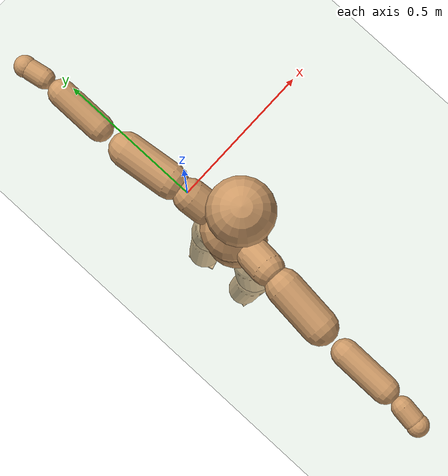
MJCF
<mujoco model="humanoid">
  <compiler coordinate="local"/>
  <default>
    <joint damping="0.0" armature="0.01" stiffness="0.0" limited="true"/>
    <geom conaffinity="1" condim="3" contype="7" margin="0.001" rgba="0.8 0.6 .4 1"/>
  </default>
  <asset>
    <texture type="skybox" builtin="gradient" rgb1=".4 .5 .6" rgb2="0 0 0" width="100" height="100"/>
    <texture builtin="flat" height="1278" mark="cross" markrgb="1 1 1" name="texgeom" random="0.01" rgb1="0.8 0.6 0.4" rgb2="0.8 0.6 0.4" type="cube" width="127"/>
    <texture builtin="checker" height="100" name="texplane" rgb1="0 0 0" rgb2="0.8 0.8 0.8" type="2d" width="100"/>
    <material name="MatPlane" reflectance="0.5" shininess="1" specular="1" texrepeat="60 60" texture="texplane"/>
    <material name="geom" texture="texgeom" texuniform="true"/>
  </asset>
  <worldbody>
    <light cutoff="100" diffuse="1 1 1" dir="-0 0 -1.3" directional="true" exponent="1" pos="0 0 1.3" specular=".1 .1 .1"/>
    <geom conaffinity="1" condim="3" name="floor" pos="0 0 0" rgba="0.8 0.9 0.8 1" size="100 100 .2" type="plane" material="MatPlane"/>
    <body name="Pelvis" pos="-0.0007 -0.2138 0.0278">
      <freejoint name="Pelvis"/>
      <geom type="sphere" contype="1" conaffinity="1" density="500" size="0.0991" pos="0.0000 0.0000 0.0000" name="Pelvis"/>
      <body name="L_Hip" pos="-0.007 0.0757 -0.0927">
        <joint name="L_Hip_x" type="hinge" pos="0 0 0" axis="1 0 0" stiffness="800" damping="80" armature="0.02" range="-180.0000 180.0000"/>
        <joint name="L_Hip_y" type="hinge" pos="0 0 0" axis="0 1 0" stiffness="800" damping="80" armature="0.02" range="-180.0000 180.0000"/>
        <joint name="L_Hip_z" type="hinge" pos="0 0 0" axis="0 0 1" stiffness="800" damping="80" armature="0.02" range="-180.0000 180.0000"/>
        <geom type="capsule" contype="1" conaffinity="1" density="500" fromto="-0.0019 0.0066 -0.0765 -0.0074 0.0263 -0.3061" size="0.0668" name="L_Hip"/>
        <body name="L_Knee" pos="-0.0093 0.0329 -0.3826">
          <joint name="L_Knee_x" type="hinge" pos="0 0 0" axis="1 0 0" stiffness="800" damping="80" armature="0.02" range="-180.0000 180.0000"/>
          <joint name="L_Knee_y" type="hinge" pos="0 0 0" axis="0 1 0" stiffness="800" damping="80" armature="0.02" range="-180.0000 180.0000"/>
          <joint name="L_Knee_z" type="hinge" pos="0 0 0" axis="0 0 1" stiffness="800" damping="80" armature="0.02" range="-180.0000 180.0000"/>
          <geom type="capsule" contype="1" conaffinity="1" density="500" fromto="-0.0094 -0.0024 -0.0801 -0.0374 -0.0096 -0.3203" size="0.0569" name="L_Knee"/>
          <body name="L_Ankle" pos="-0.0468 -0.012 -0.4004">
            <joint name="L_Ankle_x" type="hinge" pos="0 0 0" axis="1 0 0" stiffness="800" damping="80" armature="0.02" range="-180.0000 180.0000"/>
            <joint name="L_Ankle_y" type="hinge" pos="0 0 0" axis="0 1 0" stiffness="800" damping="80" armature="0.02" range="-180.0000 180.0000"/>
            <joint name="L_Ankle_z" type="hinge" pos="0 0 0" axis="0 0 1" stiffness="800" damping="80" armature="0.02" range="-180.0000 180.0000"/>
            <geom type="box" contype="1" conaffinity="1" density="500" pos="0.0589 0.0147 -0.0283" size="0.0851 0.0506 0.0205" quat="0.9925 0.0000 0.0000 0.1223" name="L_Ankle"/>
            <body name="L_Toe" pos="0.1178 0.0295 -0.0567">
              <joint name="L_Toe_x" type="hinge" pos="0 0 0" axis="1 0 0" stiffness="500" damping="50" armature="0.02" range="-180.0000 180.0000"/>
              <joint name="L_Toe_y" type="hinge" pos="0 0 0" axis="0 1 0" stiffness="500" damping="50" armature="0.02" range="-180.0000 180.0000"/>
              <joint name="L_Toe_z" type="hinge" pos="0 0 0" axis="0 0 1" stiffness="500" damping="50" armature="0.02" range="-180.0000 180.0000"/>
              <geom type="box" contype="1" conaffinity="1" density="500" pos="0.0000 0.0000 0.0279" size="0.001 0.0025 0.001" quat="0.9918 0.0000 0.0000 0.1281" name="L_Toe"/>
            </body>
          </body>
        </body>
      </body>
      <body name="R_Hip" pos="-0.0049 -0.0736 -0.0921">
        <joint name="R_Hip_x" type="hinge" pos="0 0 0" axis="1 0 0" stiffness="800" damping="80" armature="0.02" range="-180.0000 180.0000"/>
        <joint name="R_Hip_y" type="hinge" pos="0 0 0" axis="0 1 0" stiffness="800" damping="80" armature="0.02" range="-180.0000 180.0000"/>
        <joint name="R_Hip_z" type="hinge" pos="0 0 0" axis="0 0 1" stiffness="800" damping="80" armature="0.02" range="-180.0000 180.0000"/>
        <geom type="capsule" contype="1" conaffinity="1" density="500" fromto="-0.0026 -0.0076 -0.0775 -0.0106 -0.0303 -0.3101" size="0.0658" name="R_Hip"/>
        <body name="R_Knee" pos="-0.0132 -0.0379 -0.3876">
          <joint name="R_Knee_x" type="hinge" pos="0 0 0" axis="1 0 0" stiffness="800" damping="80" armature="0.02" range="-180.0000 180.0000"/>
          <joint name="R_Knee_y" type="hinge" pos="0 0 0" axis="0 1 0" stiffness="800" damping="80" armature="0.02" range="-180.0000 180.0000"/>
          <joint name="R_Knee_z" type="hinge" pos="0 0 0" axis="0 0 1" stiffness="800" damping="80" armature="0.02" range="-180.0000 180.0000"/>
          <geom type="capsule" contype="1" conaffinity="1" density="500" fromto="-0.0092 0.0028 -0.0801 -0.0367 0.0113 -0.3206" size="0.0569" name="R_Knee"/>
          <body name="R_Ankle" pos="-0.0459 0.0142 -0.4007">
            <joint name="R_Ankle_x" type="hinge" pos="0 0 0" axis="1 0 0" stiffness="800" damping="80" armature="0.02" range="-180.0000 180.0000"/>
            <joint name="R_Ankle_y" type="hinge" pos="0 0 0" axis="0 1 0" stiffness="800" damping="80" armature="0.02" range="-180.0000 180.0000"/>
            <joint name="R_Ankle_z" type="hinge" pos="0 0 0" axis="0 0 1" stiffness="800" damping="80" armature="0.02" range="-180.0000 180.0000"/>
            <geom type="box" contype="1" conaffinity="1" density="500" pos="0.0612 -0.0141 -0.0246" size="0.0866 0.0489 0.0211" quat="0.9936 0.0000 0.0000 -0.1133" name="R_Ankle"/>
            <body name="R_Toe" pos="0.1225 -0.0283 -0.0492">
              <joint name="R_Toe_x" type="hinge" pos="0 0 0" axis="1 0 0" stiffness="500" damping="50" armature="0.02" range="-180.0000 180.0000"/>
              <joint name="R_Toe_y" type="hinge" pos="0 0 0" axis="0 1 0" stiffness="500" damping="50" armature="0.02" range="-180.0000 180.0000"/>
              <joint name="R_Toe_z" type="hinge" pos="0 0 0" axis="0 0 1" stiffness="500" damping="50" armature="0.02" range="-180.0000 180.0000"/>
              <geom type="box" contype="1" conaffinity="1" density="500" pos="0.0000 0.0000 0.0260" size="0.0009 0.0024 0.0011" quat="0.9946 0.0000 0.0000 -0.1039" name="R_Toe"/>
            </body>
          </body>
        </body>
      </body>
      <body name="Torso" pos="-0.0264 -0.0024 0.1082">
        <joint name="Torso_x" type="hinge" pos="0 0 0" axis="1 0 0" stiffness="1000" damping="100" armature="0.02" range="-180.0000 180.0000"/>
        <joint name="Torso_y" type="hinge" pos="0 0 0" axis="0 1 0" stiffness="1000" damping="100" armature="0.02" range="-180.0000 180.0000"/>
        <joint name="Torso_z" type="hinge" pos="0 0 0" axis="0 0 1" stiffness="1000" damping="100" armature="0.02" range="-180.0000 180.0000"/>
        <geom type="capsule" contype="1" conaffinity="1" density="500" fromto="0.0001 0.0025 0.0772 0.0001 0.0017 0.0515" size="0.075" name="Torso"/>
        <body name="Spine" pos="0.0001 0.0042 0.1287">
          <joint name="Spine_x" type="hinge" pos="0 0 0" axis="1 0 0" stiffness="1000" damping="100" armature="0.02" range="-180.0000 180.0000"/>
          <joint name="Spine_y" type="hinge" pos="0 0 0" axis="0 1 0" stiffness="1000" damping="100" armature="0.02" range="-180.0000 180.0000"/>
          <joint name="Spine_z" type="hinge" pos="0 0 0" axis="0 0 1" stiffness="1000" damping="100" armature="0.02" range="-180.0000 180.0000"/>
          <geom type="capsule" contype="1" conaffinity="1" density="500" fromto="0.0174 0.0008 0.0307 0.0116 0.0005 0.0205" size="0.0749" name="Spine"/>
          <body name="Chest" pos="0.029 0.0013 0.0511">
            <joint name="Chest_x" type="hinge" pos="0 0 0" axis="1 0 0" stiffness="1000" damping="100" armature="0.02" range="-180.0000 180.0000"/>
            <joint name="Chest_y" type="hinge" pos="0 0 0" axis="0 1 0" stiffness="1000" damping="100" armature="0.02" range="-180.0000 180.0000"/>
            <joint name="Chest_z" type="hinge" pos="0 0 0" axis="0 0 1" stiffness="1000" damping="100" armature="0.02" range="-180.0000 180.0000"/>
            <geom type="capsule" contype="1" conaffinity="1" density="500" fromto="-0.0228 -0.0007 0.0894 -0.0152 -0.0005 0.0596" size="0.0993" name="Chest"/>
            <body name="Neck" pos="-0.0413 -0.0015 0.2098">
              <joint name="Neck_x" type="hinge" pos="0 0 0" axis="1 0 0" stiffness="500" damping="50" armature="0.02" range="-180.0000 180.0000"/>
              <joint name="Neck_y" type="hinge" pos="0 0 0" axis="0 1 0" stiffness="500" damping="50" armature="0.02" range="-180.0000 180.0000"/>
              <joint name="Neck_z" type="hinge" pos="0 0 0" axis="0 0 1" stiffness="500" damping="50" armature="0.02" range="-180.0000 180.0000"/>
              <geom type="capsule" contype="1" conaffinity="1" density="500" fromto="0.0104 0.0007 0.0128 0.0417 0.0029 0.0511" size="0.043" name="Neck"/>
              <body name="Head" pos="0.0522 0.0036 0.0638">
                <joint name="Head_x" type="hinge" pos="0 0 0" axis="1 0 0" stiffness="500" damping="50" armature="0.02" range="-180.0000 180.0000"/>
                <joint name="Head_y" type="hinge" pos="0 0 0" axis="0 1 0" stiffness="500" damping="50" armature="0.02" range="-180.0000 180.0000"/>
                <joint name="Head_z" type="hinge" pos="0 0 0" axis="0 0 1" stiffness="500" damping="50" armature="0.02" range="-180.0000 180.0000"/>
                <geom type="sphere" contype="1" conaffinity="1" density="500" size="0.1016" pos="0.0000 0.0000 0.0000" name="Head"/>
              </body>
            </body>
            <body name="L_Thorax" pos="-0.0338 0.0791 0.1199">
              <joint name="L_Thorax_x" type="hinge" pos="0 0 0" axis="1 0 0" stiffness="500" damping="50" armature="0.02" range="-180.0000 180.0000"/>
              <joint name="L_Thorax_y" type="hinge" pos="0 0 0" axis="0 1 0" stiffness="500" damping="50" armature="0.02" range="-180.0000 180.0000"/>
              <joint name="L_Thorax_z" type="hinge" pos="0 0 0" axis="0 0 1" stiffness="500" damping="50" armature="0.02" range="-180.0000 180.0000"/>
              <geom type="capsule" contype="1" conaffinity="1" density="500" fromto="-0.0020 0.0177 0.0066 -0.0082 0.0709 0.0265" size="0.0525" name="L_Thorax"/>
              <body name="L_Shoulder" pos="-0.0102 0.0886 0.0331">
                <joint name="L_Shoulder_x" type="hinge" pos="0 0 0" axis="1 0 0" stiffness="500" damping="50" armature="0.02" range="-720.0000 720.0000"/>
                <joint name="L_Shoulder_y" type="hinge" pos="0 0 0" axis="0 1 0" stiffness="500" damping="50" armature="0.02" range="-720.0000 720.0000"/>
                <joint name="L_Shoulder_z" type="hinge" pos="0 0 0" axis="0 0 1" stiffness="500" damping="50" armature="0.02" range="-720.0000 720.0000"/>
                <geom type="capsule" contype="1" conaffinity="1" density="500" fromto="-0.0059 0.0520 -0.0028 -0.0236 0.2081 -0.0112" size="0.0541" name="L_Shoulder"/>
                <body name="L_Elbow" pos="-0.0295 0.2601 -0.0141">
                  <joint name="L_Elbow_x" type="hinge" pos="0 0 0" axis="1 0 0" stiffness="500" damping="50" armature="0.02" range="-720.0000 720.0000"/>
                  <joint name="L_Elbow_y" type="hinge" pos="0 0 0" axis="0 1 0" stiffness="500" damping="50" armature="0.02" range="-720.0000 720.0000"/>
                  <joint name="L_Elbow_z" type="hinge" pos="0 0 0" axis="0 0 1" stiffness="500" damping="50" armature="0.02" range="-720.0000 720.0000"/>
                  <geom type="capsule" contype="1" conaffinity="1" density="500" fromto="-0.0000 0.0497 0.0020 -0.0001 0.1989 0.0082" size="0.0415" name="L_Elbow"/>
                  <body name="L_Wrist" pos="-0.0002 0.2486 0.0102">
                    <joint name="L_Wrist_x" type="hinge" pos="0 0 0" axis="1 0 0" stiffness="300" damping="30" armature="0.02" range="-180.0000 180.0000"/>
                    <joint name="L_Wrist_y" type="hinge" pos="0 0 0" axis="0 1 0" stiffness="300" damping="30" armature="0.02" range="-180.0000 180.0000"/>
                    <joint name="L_Wrist_z" type="hinge" pos="0 0 0" axis="0 0 1" stiffness="300" damping="30" armature="0.02" range="-180.0000 180.0000"/>
                    <geom type="capsule" contype="1" conaffinity="1" density="500" fromto="-0.0029 0.0168 -0.0018 -0.0116 0.0673 -0.0073" size="0.0319" name="L_Wrist"/>
                    <body name="L_Hand" pos="-0.0145 0.0841 -0.0091">
                      <joint name="L_Hand_x" type="hinge" pos="0 0 0" axis="1 0 0" stiffness="300" damping="30" armature="0.02" range="-180.0000 180.0000"/>
                      <joint name="L_Hand_y" type="hinge" pos="0 0 0" axis="0 1 0" stiffness="300" damping="30" armature="0.02" range="-180.0000 180.0000"/>
                      <joint name="L_Hand_z" type="hinge" pos="0 0 0" axis="0 0 1" stiffness="300" damping="30" armature="0.02" range="-180.0000 180.0000"/>
                      <geom type="sphere" contype="1" conaffinity="1" density="500" size="0.0338" pos="0.0000 0.0000 0.0000" name="L_Hand"/>
                    </body>
                  </body>
                </body>
              </body>
            </body>
            <body name="R_Thorax" pos="-0.0391 -0.0813 0.1174">
              <joint name="R_Thorax_x" type="hinge" pos="0 0 0" axis="1 0 0" stiffness="500" damping="50" armature="0.02" range="-180.0000 180.0000"/>
              <joint name="R_Thorax_y" type="hinge" pos="0 0 0" axis="0 1 0" stiffness="500" damping="50" armature="0.02" range="-180.0000 180.0000"/>
              <joint name="R_Thorax_z" type="hinge" pos="0 0 0" axis="0 0 1" stiffness="500" damping="50" armature="0.02" range="-180.0000 180.0000"/>
              <geom type="capsule" contype="1" conaffinity="1" density="500" fromto="-0.0020 -0.0188 0.0069 -0.0081 -0.0751 0.0277" size="0.0517" name="R_Thorax"/>
              <body name="R_Shoulder" pos="-0.0101 -0.0938 0.0346">
                <joint name="R_Shoulder_x" type="hinge" pos="0 0 0" axis="1 0 0" stiffness="500" damping="50" armature="0.02" range="-720.0000 720.0000"/>
                <joint name="R_Shoulder_y" type="hinge" pos="0 0 0" axis="0 1 0" stiffness="500" damping="50" armature="0.02" range="-720.0000 720.0000"/>
                <joint name="R_Shoulder_z" type="hinge" pos="0 0 0" axis="0 0 1" stiffness="500" damping="50" armature="0.02" range="-720.0000 720.0000"/>
                <geom type="capsule" contype="1" conaffinity="1" density="500" fromto="-0.0048 -0.0510 -0.0031 -0.0192 -0.2040 -0.0124" size="0.0555" name="R_Shoulder"/>
                <body name="R_Elbow" pos="-0.024 -0.255 -0.0155">
                  <joint name="R_Elbow_x" type="hinge" pos="0 0 0" axis="1 0 0" stiffness="500" damping="50" armature="0.02" range="-720.0000 720.0000"/>
                  <joint name="R_Elbow_y" type="hinge" pos="0 0 0" axis="0 1 0" stiffness="500" damping="50" armature="0.02" range="-720.0000 720.0000"/>
                  <joint name="R_Elbow_z" type="hinge" pos="0 0 0" axis="0 0 1" stiffness="500" damping="50" armature="0.02" range="-720.0000 720.0000"/>
                  <geom type="capsule" contype="1" conaffinity="1" density="500" fromto="-0.0006 -0.0512 0.0021 -0.0025 -0.2049 0.0082" size="0.0418" name="R_Elbow"/>
                  <body name="R_Wrist" pos="-0.0031 -0.2562 0.0103">
                    <joint name="R_Wrist_x" type="hinge" pos="0 0 0" axis="1 0 0" stiffness="300" damping="30" armature="0.02" range="-180.0000 180.0000"/>
                    <joint name="R_Wrist_y" type="hinge" pos="0 0 0" axis="0 1 0" stiffness="300" damping="30" armature="0.02" range="-180.0000 180.0000"/>
                    <joint name="R_Wrist_z" type="hinge" pos="0 0 0" axis="0 0 1" stiffness="300" damping="30" armature="0.02" range="-180.0000 180.0000"/>
                    <geom type="capsule" contype="1" conaffinity="1" density="500" fromto="-0.0022 -0.0169 -0.0014 -0.0086 -0.0677 -0.0054" size="0.0327" name="R_Wrist"/>
                    <body name="R_Hand" pos="-0.0108 -0.0846 -0.0068">
                      <joint name="R_Hand_x" type="hinge" pos="0 0 0" axis="1 0 0" stiffness="300" damping="30" armature="0.02" range="-180.0000 180.0000"/>
                      <joint name="R_Hand_y" type="hinge" pos="0 0 0" axis="0 1 0" stiffness="300" damping="30" armature="0.02" range="-180.0000 180.0000"/>
                      <joint name="R_Hand_z" type="hinge" pos="0 0 0" axis="0 0 1" stiffness="300" damping="30" armature="0.02" range="-180.0000 180.0000"/>
                      <geom type="sphere" contype="1" conaffinity="1" density="500" size="0.0341" pos="0.0000 0.0000 0.0000" name="R_Hand"/>
                    </body>
                  </body>
                </body>
              </body>
            </body>
          </body>
        </body>
      </body>
    </body>
  </worldbody>
  <actuator>
    <motor name="L_Hip_x" joint="L_Hip_x" gear="500"/>
    <motor name="L_Hip_y" joint="L_Hip_y" gear="500"/>
    <motor name="L_Hip_z" joint="L_Hip_z" gear="500"/>
    <motor name="L_Knee_x" joint="L_Knee_x" gear="500"/>
    <motor name="L_Knee_y" joint="L_Knee_y" gear="500"/>
    <motor name="L_Knee_z" joint="L_Knee_z" gear="500"/>
    <motor name="L_Ankle_x" joint="L_Ankle_x" gear="500"/>
    <motor name="L_Ankle_y" joint="L_Ankle_y" gear="500"/>
    <motor name="L_Ankle_z" joint="L_Ankle_z" gear="500"/>
    <motor name="L_Toe_x" joint="L_Toe_x" gear="500"/>
    <motor name="L_Toe_y" joint="L_Toe_y" gear="500"/>
    <motor name="L_Toe_z" joint="L_Toe_z" gear="500"/>
    <motor name="R_Hip_x" joint="R_Hip_x" gear="500"/>
    <motor name="R_Hip_y" joint="R_Hip_y" gear="500"/>
    <motor name="R_Hip_z" joint="R_Hip_z" gear="500"/>
    <motor name="R_Knee_x" joint="R_Knee_x" gear="500"/>
    <motor name="R_Knee_y" joint="R_Knee_y" gear="500"/>
    <motor name="R_Knee_z" joint="R_Knee_z" gear="500"/>
    <motor name="R_Ankle_x" joint="R_Ankle_x" gear="500"/>
    <motor name="R_Ankle_y" joint="R_Ankle_y" gear="500"/>
    <motor name="R_Ankle_z" joint="R_Ankle_z" gear="500"/>
    <motor name="R_Toe_x" joint="R_Toe_x" gear="500"/>
    <motor name="R_Toe_y" joint="R_Toe_y" gear="500"/>
    <motor name="R_Toe_z" joint="R_Toe_z" gear="500"/>
    <motor name="Torso_x" joint="Torso_x" gear="500"/>
    <motor name="Torso_y" joint="Torso_y" gear="500"/>
    <motor name="Torso_z" joint="Torso_z" gear="500"/>
    <motor name="Spine_x" joint="Spine_x" gear="500"/>
    <motor name="Spine_y" joint="Spine_y" gear="500"/>
    <motor name="Spine_z" joint="Spine_z" gear="500"/>
    <motor name="Chest_x" joint="Chest_x" gear="500"/>
    <motor name="Chest_y" joint="Chest_y" gear="500"/>
    <motor name="Chest_z" joint="Chest_z" gear="500"/>
    <motor name="Neck_x" joint="Neck_x" gear="500"/>
    <motor name="Neck_y" joint="Neck_y" gear="500"/>
    <motor name="Neck_z" joint="Neck_z" gear="500"/>
    <motor name="Head_x" joint="Head_x" gear="500"/>
    <motor name="Head_y" joint="Head_y" gear="500"/>
    <motor name="Head_z" joint="Head_z" gear="500"/>
    <motor name="L_Thorax_x" joint="L_Thorax_x" gear="500"/>
    <motor name="L_Thorax_y" joint="L_Thorax_y" gear="500"/>
    <motor name="L_Thorax_z" joint="L_Thorax_z" gear="500"/>
    <motor name="L_Shoulder_x" joint="L_Shoulder_x" gear="500"/>
    <motor name="L_Shoulder_y" joint="L_Shoulder_y" gear="500"/>
    <motor name="L_Shoulder_z" joint="L_Shoulder_z" gear="500"/>
    <motor name="L_Elbow_x" joint="L_Elbow_x" gear="500"/>
    <motor name="L_Elbow_y" joint="L_Elbow_y" gear="500"/>
    <motor name="L_Elbow_z" joint="L_Elbow_z" gear="500"/>
    <motor name="L_Wrist_x" joint="L_Wrist_x" gear="500"/>
    <motor name="L_Wrist_y" joint="L_Wrist_y" gear="500"/>
    <motor name="L_Wrist_z" joint="L_Wrist_z" gear="500"/>
    <motor name="L_Hand_x" joint="L_Hand_x" gear="500"/>
    <motor name="L_Hand_y" joint="L_Hand_y" gear="500"/>
    <motor name="L_Hand_z" joint="L_Hand_z" gear="500"/>
    <motor name="R_Thorax_x" joint="R_Thorax_x" gear="500"/>
    <motor name="R_Thorax_y" joint="R_Thorax_y" gear="500"/>
    <motor name="R_Thorax_z" joint="R_Thorax_z" gear="500"/>
    <motor name="R_Shoulder_x" joint="R_Shoulder_x" gear="500"/>
    <motor name="R_Shoulder_y" joint="R_Shoulder_y" gear="500"/>
    <motor name="R_Shoulder_z" joint="R_Shoulder_z" gear="500"/>
    <motor name="R_Elbow_x" joint="R_Elbow_x" gear="500"/>
    <motor name="R_Elbow_y" joint="R_Elbow_y" gear="500"/>
    <motor name="R_Elbow_z" joint="R_Elbow_z" gear="500"/>
    <motor name="R_Wrist_x" joint="R_Wrist_x" gear="500"/>
    <motor name="R_Wrist_y" joint="R_Wrist_y" gear="500"/>
    <motor name="R_Wrist_z" joint="R_Wrist_z" gear="500"/>
    <motor name="R_Hand_x" joint="R_Hand_x" gear="500"/>
    <motor name="R_Hand_y" joint="R_Hand_y" gear="500"/>
    <motor name="R_Hand_z" joint="R_Hand_z" gear="500"/>
  </actuator>
  <contact>
    <exclude body1="Torso" body2="Chest"/>
    <exclude body1="Head" body2="Chest"/>
    <exclude body1="R_Knee" body2="R_Toe"/>
    <exclude body1="R_Knee" body2="L_Ankle"/>
    <exclude body1="R_Knee" body2="L_Toe"/>
    <exclude body1="L_Knee" body2="L_Toe"/>
    <exclude body1="L_Knee" body2="R_Ankle"/>
    <exclude body1="L_Knee" body2="R_Toe"/>
    <exclude body1="L_Shoulder" body2="Chest"/>
    <exclude body1="R_Shoulder" body2="Chest"/>
  </contact>
  <sensor/>
  <size njmax="700" nconmax="700"/>
</mujoco>
